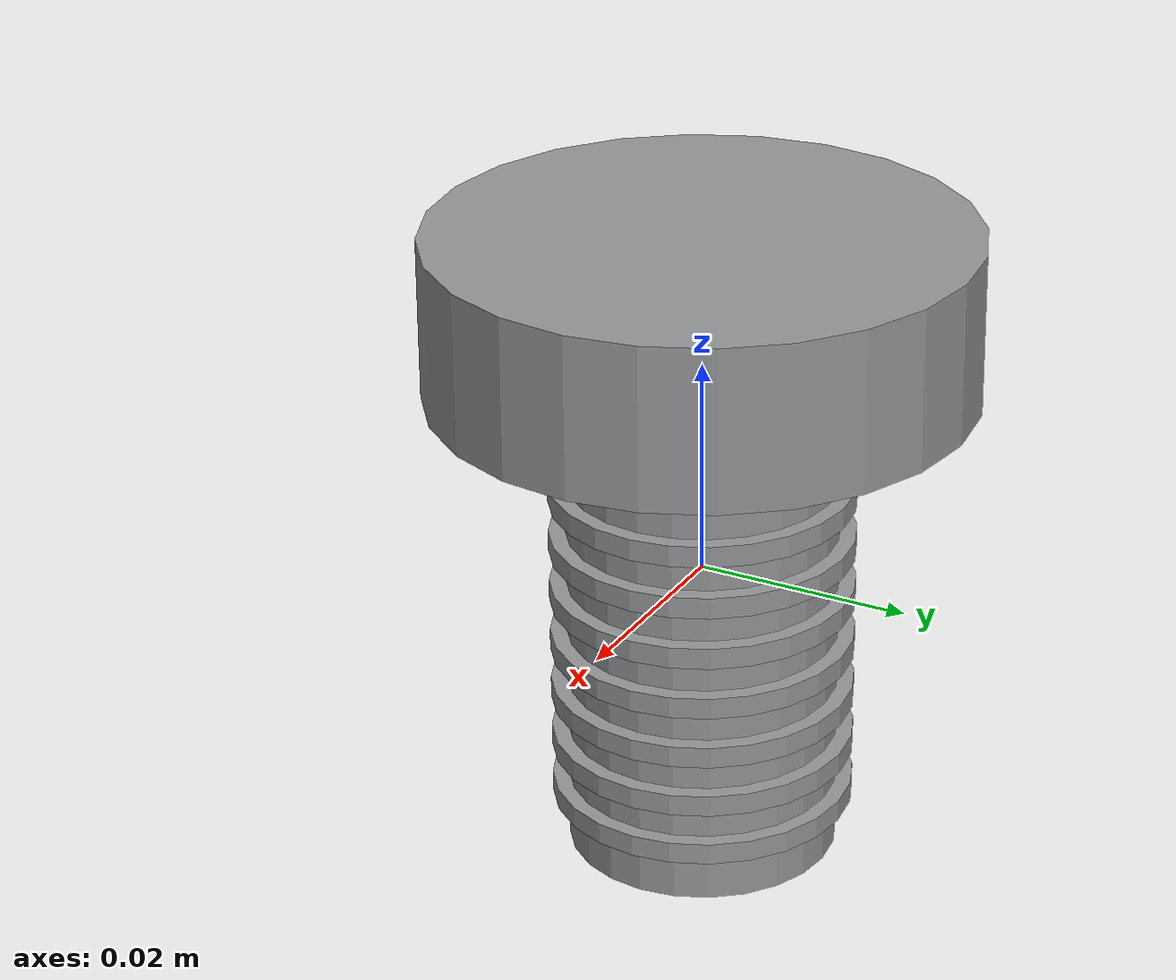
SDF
<?xml version="1.0"?>
<sdf version="1.8">
  <model name="sensoragent_part_short_bolt">
    <link name="part">
      <inertial>
        <mass>0.20</mass>
        <inertia>
          <ixx>0.0001162</ixx>
          <iyy>0.0001162</iyy>
          <izz>0.0000625</izz>
        </inertia>
      </inertial>
      <collision name="shaft_collision">
        <pose>0 0 -0.005 0 0 0</pose>
        <geometry><cylinder><radius>0.0125</radius><length>0.045</length></cylinder></geometry>
      </collision>
      <collision name="head_collision">
        <pose>0 0 0.025 0 0 0</pose>
        <geometry><cylinder><radius>0.025</radius><length>0.015</length></cylinder></geometry>
      </collision>
      <visual name="shaft_visual">
        <pose>0 0 -0.005 0 0 0</pose>
        <geometry><cylinder><radius>0.0125</radius><length>0.045</length></cylinder></geometry>
        <material><ambient>0.42 0.43 0.44 1</ambient><diffuse>0.58 0.59 0.60 1</diffuse><specular>0.35 0.35 0.35 1</specular></material>
      </visual>
      <visual name="thread_0"><pose>0 0 -0.022 0 0 0</pose><geometry><cylinder><radius>0.014</radius><length>0.002</length></cylinder></geometry><material><diffuse>0.58 0.59 0.60 1</diffuse></material></visual>
      <visual name="thread_1"><pose>0 0 -0.017 0 0 0</pose><geometry><cylinder><radius>0.014</radius><length>0.002</length></cylinder></geometry><material><diffuse>0.58 0.59 0.60 1</diffuse></material></visual>
      <visual name="thread_2"><pose>0 0 -0.012 0 0 0</pose><geometry><cylinder><radius>0.014</radius><length>0.002</length></cylinder></geometry><material><diffuse>0.58 0.59 0.60 1</diffuse></material></visual>
      <visual name="thread_3"><pose>0 0 -0.007 0 0 0</pose><geometry><cylinder><radius>0.014</radius><length>0.002</length></cylinder></geometry><material><diffuse>0.58 0.59 0.60 1</diffuse></material></visual>
      <visual name="thread_4"><pose>0 0 -0.002 0 0 0</pose><geometry><cylinder><radius>0.014</radius><length>0.002</length></cylinder></geometry><material><diffuse>0.58 0.59 0.60 1</diffuse></material></visual>
      <visual name="thread_5"><pose>0 0 0.003 0 0 0</pose><geometry><cylinder><radius>0.014</radius><length>0.002</length></cylinder></geometry><material><diffuse>0.58 0.59 0.60 1</diffuse></material></visual>
      <visual name="thread_6"><pose>0 0 0.008 0 0 0</pose><geometry><cylinder><radius>0.014</radius><length>0.002</length></cylinder></geometry><material><diffuse>0.58 0.59 0.60 1</diffuse></material></visual>
      <visual name="head_visual">
        <pose>0 0 0.025 0 0 0</pose>
        <geometry><cylinder><radius>0.025</radius><length>0.015</length></cylinder></geometry>
        <material><ambient>0.42 0.43 0.44 1</ambient><diffuse>0.58 0.59 0.60 1</diffuse><specular>0.35 0.35 0.35 1</specular></material>
      </visual>
    </link>
  </model>
</sdf>
